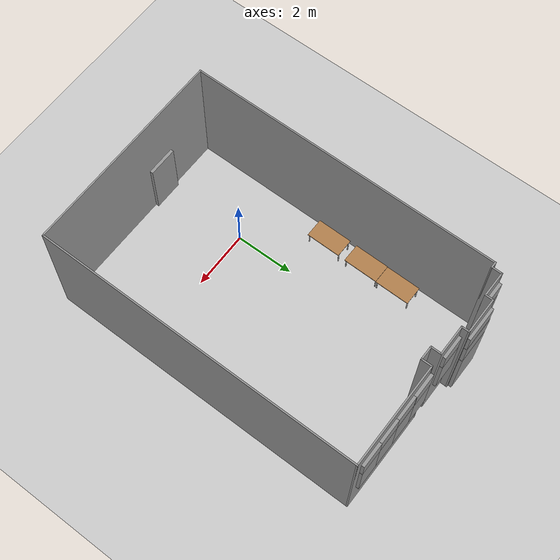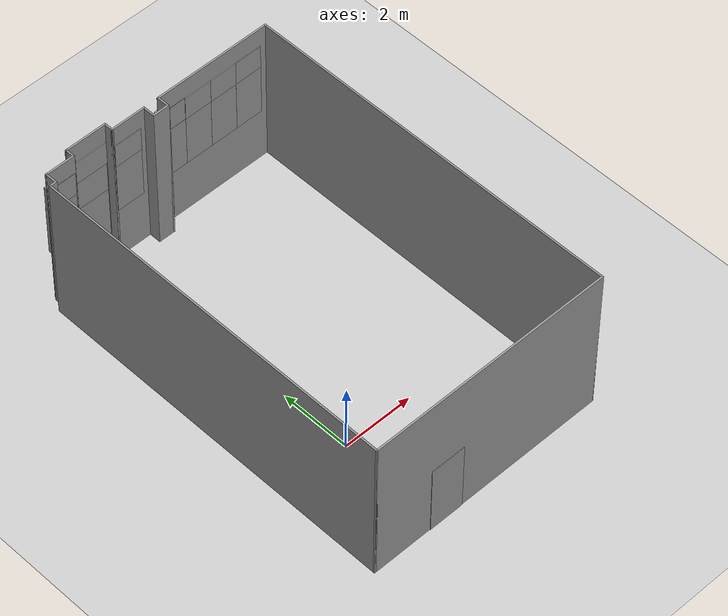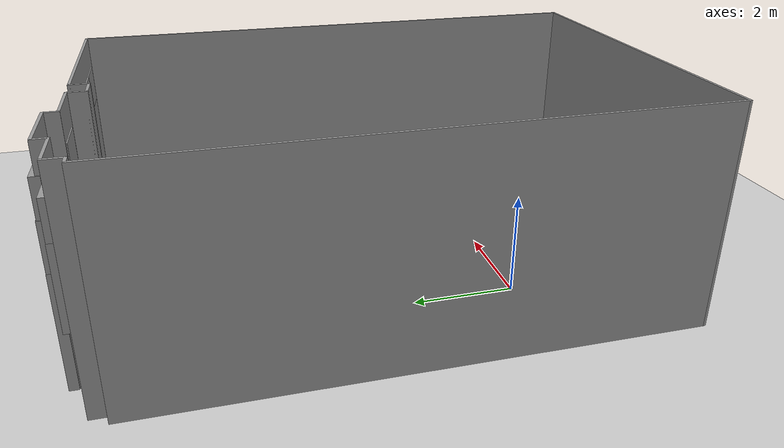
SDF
<sdf version="1.7">
 <world name="default">
  <model name="ground_plane">
   <static>1</static>
   <link name="link">
    <collision name="collision">
     <geometry><plane><normal>0 0 1</normal><size>100 100</size></plane></geometry>
     <surface>
      <contact><collide_bitmask>65535</collide_bitmask></contact>
      <friction><ode><mu>100</mu><mu2>50</mu2></ode></friction>
     </surface>
    </collision>
    <visual name="visual">
     <cast_shadows>0</cast_shadows>
     <geometry><plane><normal>0 0 1</normal><size>100 100</size></plane></geometry>
     <material>
      <script><uri>file://media/materials/scripts/gazebo.material</uri><name>Gazebo/Grey</name></script>
     </material>
    </visual>
   </link>
  </model>
  <model name="RoboticLab">
   <pose>1.47128 2.55443 0 0 -0 0</pose>
   <link name="Wall_14">
    <collision name="Wall_14_Collision">
     <geometry><box><size>6.99 0.05 4.35</size></box></geometry>
     <pose>0 0 2.175 0 -0 0</pose>
    </collision>
    <visual name="Wall_14_Visual">
     <pose>0 0 2.175 0 -0 0</pose>
     <geometry><box><size>6.99 0.05 4.35</size></box></geometry>
     <material>
      <script><uri>file://media/materials/scripts/gazebo.material</uri><name>Gazebo/Grey</name></script>
      <ambient>1 1 1 1</ambient>
     </material>
     <meta><layer>0</layer></meta>
    </visual>
    <pose>-0 -5.495 0 0 -0 0</pose>
   </link>
   <link name="Wall_16">
    <collision name="Wall_16_Collision">
     <geometry><box><size>10.8 0.05 4.35</size></box></geometry>
     <pose>0 0 2.175 0 -0 0</pose>
    </collision>
    <visual name="Wall_16_Visual">
     <pose>0 0 2.175 0 -0 0</pose>
     <geometry><box><size>10.8 0.05 4.35</size></box></geometry>
     <material>
      <script><uri>file://media/materials/scripts/gazebo.material</uri><name>Gazebo/Grey</name></script>
      <ambient>1 1 1 1</ambient>
     </material>
     <meta><layer>0</layer></meta>
    </visual>
    <pose>3.47 -0.12 0 0 -0 1.5708</pose>
   </link>
   <link name="Wall_18">
    <collision name="Wall_18_Collision">
     <geometry><box><size>10.48 0.05 4.35</size></box></geometry>
     <pose>0 0 2.175 0 -0 0</pose>
    </collision>
    <visual name="Wall_18_Visual">
     <pose>0 0 2.175 0 -0 0</pose>
     <geometry><box><size>10.48 0.05 4.35</size></box></geometry>
     <material>
      <script><uri>file://media/materials/scripts/gazebo.material</uri><name>Gazebo/Grey</name></script>
      <ambient>1 1 1 1</ambient>
     </material>
     <meta><layer>0</layer></meta>
    </visual>
    <pose>-3.47 -0.28 0 0 -0 1.5708</pose>
   </link>
   <link name="Wall_20">
    <collision name="Wall_20_Collision">
     <geometry><box><size>0.22 0.05 4.35</size></box></geometry>
     <pose>0 0 2.175 0 -0 0</pose>
    </collision>
    <visual name="Wall_20_Visual">
     <pose>0 0 2.175 0 -0 0</pose>
     <geometry><box><size>0.22 0.05 4.35</size></box></geometry>
     <material>
      <script><uri>file://media/materials/scripts/gazebo.material</uri><name>Gazebo/Grey</name></script>
      <ambient>1 1 1 1</ambient>
     </material>
     <meta><layer>0</layer></meta>
    </visual>
    <pose>-3.385 4.935 0 0 -0 0</pose>
   </link>
   <link name="Wall_25">
    <collision name="Wall_25_Collision">
     <geometry><box><size>0.37 0.05 4.35</size></box></geometry>
     <pose>0 0 2.175 0 -0 0</pose>
    </collision>
    <visual name="Wall_25_Visual">
     <pose>0 0 2.175 0 -0 0</pose>
     <geometry><box><size>0.37 0.05 4.35</size></box></geometry>
     <material>
      <script><uri>file://media/materials/scripts/gazebo.material</uri><name>Gazebo/Grey</name></script>
      <ambient>1 1 1 1</ambient>
     </material>
     <meta><layer>0</layer></meta>
    </visual>
    <pose>-3.3 5.095 0 0 -0 1.5708</pose>
   </link>
   <link name="Wall_27">
    <collision name="Wall_27_Collision">
     <geometry><box><size>0.86 0.05 4.35</size></box></geometry>
     <pose>0 0 2.175 0 -0 0</pose>
    </collision>
    <visual name="Wall_27_Visual">
     <pose>0 0 2.175 0 -0 0</pose>
     <geometry><box><size>0.86 0.05 4.35</size></box></geometry>
     <material>
      <script><uri>file://media/materials/scripts/gazebo.material</uri><name>Gazebo/Grey</name></script>
      <ambient>1 1 1 1</ambient>
     </material>
     <meta><layer>0</layer></meta>
    </visual>
    <pose>-2.895 5.255 0 0 -0 0</pose>
   </link>
   <link name="Wall_29">
    <collision name="Wall_29_Collision">
     <geometry><box><size>0.29 0.05 4.35</size></box></geometry>
     <pose>0 0 2.175 0 -0 0</pose>
    </collision>
    <visual name="Wall_29_Visual">
     <pose>0 0 2.175 0 -0 0</pose>
     <geometry><box><size>0.29 0.05 4.35</size></box></geometry>
     <material>
      <script><uri>file://media/materials/scripts/gazebo.material</uri><name>Gazebo/Grey</name></script>
      <ambient>1 1 1 1</ambient>
     </material>
     <meta><layer>0</layer></meta>
    </visual>
    <pose>-2.49 5.375 0 0 -0 1.5708</pose>
   </link>
   <link name="Wall_32">
    <collision name="Wall_32_Collision">
     <geometry><box><size>1.22 0.05 4.35</size></box></geometry>
     <pose>0 0 2.175 0 -0 0</pose>
    </collision>
    <visual name="Wall_32_Visual">
     <pose>0 0 2.175 0 -0 0</pose>
     <geometry><box><size>1.22 0.05 4.35</size></box></geometry>
     <material>
      <script><uri>file://media/materials/scripts/gazebo.material</uri><name>Gazebo/Grey</name></script>
      <ambient>1 1 1 1</ambient>
     </material>
     <meta><layer>0</layer></meta>
    </visual>
    <pose>-1.905 5.495 0 0 -0 0</pose>
   </link>
   <link name="Wall_34">
    <collision name="Wall_34_Collision">
     <geometry><box><size>0.29 0.05 4.35</size></box></geometry>
     <pose>0 0 2.175 0 -0 0</pose>
    </collision>
    <visual name="Wall_34_Visual">
     <pose>0 0 2.175 0 -0 0</pose>
     <geometry><box><size>0.29 0.05 4.35</size></box></geometry>
     <material>
      <script><uri>file://media/materials/scripts/gazebo.material</uri><name>Gazebo/Grey</name></script>
      <ambient>1 1 1 1</ambient>
     </material>
     <meta><layer>0</layer></meta>
    </visual>
    <pose>-1.32 5.375 0 0 -0 -1.5708</pose>
   </link>
   <link name="Wall_37">
    <collision name="Wall_37_Collision">
     <geometry><box><size>1.03 0.05 4.35</size></box></geometry>
     <pose>0 0 2.175 0 -0 0</pose>
    </collision>
    <visual name="Wall_37_Visual">
     <pose>0 0 2.175 0 -0 0</pose>
     <geometry><box><size>1.03 0.05 4.35</size></box></geometry>
     <material>
      <script><uri>file://media/materials/scripts/gazebo.material</uri><name>Gazebo/Grey</name></script>
      <ambient>1 1 1 1</ambient>
     </material>
     <meta><layer>0</layer></meta>
    </visual>
    <pose>-0.83 5.255 0 0 -0 0</pose>
   </link>
   <link name="Wall_39">
    <collision name="Wall_39_Collision">
     <geometry><box><size>0.38 0.05 4.35</size></box></geometry>
     <pose>0 0 2.175 0 -0 0</pose>
    </collision>
    <visual name="Wall_39_Visual">
     <pose>0 0 2.175 0 -0 0</pose>
     <geometry><box><size>0.38 0.05 4.35</size></box></geometry>
     <material>
      <script><uri>file://media/materials/scripts/gazebo.material</uri><name>Gazebo/Grey</name></script>
      <ambient>1 1 1 1</ambient>
     </material>
     <meta><layer>0</layer></meta>
    </visual>
    <pose>-0.34 5.09 0 0 -0 -1.5708</pose>
   </link>
   <link name="Wall_41">
    <collision name="Wall_41_Collision">
     <geometry><box><size>0.49 0.05 4.35</size></box></geometry>
     <pose>0 0 2.175 0 -0 0</pose>
    </collision>
    <visual name="Wall_41_Visual">
     <pose>0 0 2.175 0 -0 0</pose>
     <geometry><box><size>0.49 0.05 4.35</size></box></geometry>
     <material>
      <script><uri>file://media/materials/scripts/gazebo.material</uri><name>Gazebo/Grey</name></script>
      <ambient>1 1 1 1</ambient>
     </material>
     <meta><layer>0</layer></meta>
    </visual>
    <pose>-0.12 4.925 0 0 -0 0</pose>
   </link>
   <link name="Wall_43">
    <collision name="Wall_43_Collision">
     <geometry><box><size>0.38 0.05 4.35</size></box></geometry>
     <pose>0 0 2.175 0 -0 0</pose>
    </collision>
    <visual name="Wall_43_Visual">
     <pose>0 0 2.175 0 -0 0</pose>
     <geometry><box><size>0.38 0.05 4.35</size></box></geometry>
     <material>
      <script><uri>file://media/materials/scripts/gazebo.material</uri><name>Gazebo/Grey</name></script>
      <ambient>1 1 1 1</ambient>
     </material>
     <meta><layer>0</layer></meta>
    </visual>
    <pose>0.1 5.09 0 0 -0 1.5708</pose>
   </link>
   <link name="Wall_45">
    <collision name="Wall_45_Collision">
     <geometry><box><size>3.42 0.05 4.35</size></box></geometry>
     <pose>0 0 2.175 0 -0 0</pose>
    </collision>
    <visual name="Wall_45_Visual">
     <pose>0 0 2.175 0 -0 0</pose>
     <geometry><box><size>3.42 0.05 4.35</size></box></geometry>
     <material>
      <script><uri>file://media/materials/scripts/gazebo.material</uri><name>Gazebo/Grey</name></script>
      <ambient>1 1 1 1</ambient>
     </material>
     <meta><layer>0</layer></meta>
    </visual>
    <pose>1.785 5.255 0 0 -0 0</pose>
   </link>
   <static>1</static>
  </model>
  <model name="RoboticLabWIndows">
   <pose>1.4338 2.64515 0 0 -0 0</pose>
   <link name="Door_0">
    <collision name="Door_0_Collision">
     <geometry><box><size>1.17 0.17 2.2</size></box></geometry>
     <pose>0 0 1.1 0 -0 0</pose>
    </collision>
    <visual name="Door_0_Visual">
     <pose>0 0 1.1 0 -0 0</pose>
     <geometry><box><size>1.17 0.17 2.2</size></box></geometry>
     <material>
      <script><uri>file://media/materials/scripts/gazebo.material</uri><name>Gazebo/Grey</name></script>
     </material>
    </visual>
    <pose>-1.91683 5.45564 0 0 -0 0</pose>
   </link>
   <link name="Door_1">
    <collision name="Door_1_Collision">
     <geometry><box><size>1 0.17 2.1</size></box></geometry>
     <pose>0 0 1.05 0 -0 0</pose>
    </collision>
    <visual name="Door_1_Visual">
     <pose>0 0 1.05 0 -0 0</pose>
     <geometry><box><size>1 0.17 2.1</size></box></geometry>
     <material>
      <script><uri>file://media/materials/scripts/gazebo.material</uri><name>Gazebo/Grey</name></script>
     </material>
    </visual>
    <pose>-1.23571 -5.53979 0 0 -0 0</pose>
   </link>
   <link name="Window_1">
    <collision name="Window_1_Collision">
     <geometry><box><size>0.8 0.17 1.5</size></box></geometry>
     <pose>0 0 0.75 0 -0 0</pose>
    </collision>
    <visual name="Window_1_Visual">
     <pose>0 0 0.75 0 -0 0</pose>
     <geometry><box><size>0.8 0.17 1.5</size></box></geometry>
     <material>
      <script><uri>file://media/materials/scripts/gazebo.material</uri><name>Gazebo/Grey</name></script>
     </material>
    </visual>
    <pose>-2.86594 5.21551 1.6 0 -0 0</pose>
   </link>
   <link name="Window_10">
    <collision name="Window_10_Collision">
     <geometry><box><size>0.8 0.17 1.5</size></box></geometry>
     <pose>0 0 0.75 0 -0 0</pose>
    </collision>
    <visual name="Window_10_Visual">
     <pose>0 0 0.75 0 -0 0</pose>
     <geometry><box><size>0.8 0.17 1.5</size></box></geometry>
     <material>
      <script><uri>file://media/materials/scripts/gazebo.material</uri><name>Gazebo/Grey</name></script>
     </material>
    </visual>
    <pose>2.90305 5.20407 1.6 0 -0 0</pose>
   </link>
   <link name="Window_11">
    <collision name="Window_11_Collision">
     <geometry><box><size>0.8 0.17 0.7</size></box></geometry>
     <pose>0 0 0.35 0 -0 0</pose>
    </collision>
    <visual name="Window_11_Visual">
     <pose>0 0 0.35 0 -0 0</pose>
     <geometry><box><size>0.8 0.17 0.7</size></box></geometry>
     <material>
      <script><uri>file://media/materials/scripts/gazebo.material</uri><name>Gazebo/Grey</name></script>
     </material>
    </visual>
    <pose>0.501685 5.20979 3.1 0 -0 0</pose>
   </link>
   <link name="Window_12">
    <collision name="Window_12_Collision">
     <geometry><box><size>0.8 0.17 0.7</size></box></geometry>
     <pose>0 0 0.35 0 -0 0</pose>
    </collision>
    <visual name="Window_12_Visual">
     <pose>0 0 0.35 0 -0 0</pose>
     <geometry><box><size>0.8 0.17 0.7</size></box></geometry>
     <material>
      <script><uri>file://media/materials/scripts/gazebo.material</uri><name>Gazebo/Grey</name></script>
     </material>
    </visual>
    <pose>1.30214 5.19835 3.1 0 -0 0</pose>
   </link>
   <link name="Window_13">
    <collision name="Window_13_Collision">
     <geometry><box><size>0.8 0.17 0.7</size></box></geometry>
     <pose>0 0 0.35 0 -0 0</pose>
    </collision>
    <visual name="Window_13_Visual">
     <pose>0 0 0.35 0 -0 0</pose>
     <geometry><box><size>0.8 0.17 0.7</size></box></geometry>
     <material>
      <script><uri>file://media/materials/scripts/gazebo.material</uri><name>Gazebo/Grey</name></script>
     </material>
    </visual>
    <pose>2.10259 5.19835 3.1 0 -0 0</pose>
   </link>
   <link name="Window_14">
    <collision name="Window_14_Collision">
     <geometry><box><size>0.8 0.17 0.7</size></box></geometry>
     <pose>0 0 0.35 0 -0 0</pose>
    </collision>
    <visual name="Window_14_Visual">
     <pose>0 0 0.35 0 -0 0</pose>
     <geometry><box><size>0.8 0.17 0.7</size></box></geometry>
     <material>
      <script><uri>file://media/materials/scripts/gazebo.material</uri><name>Gazebo/Grey</name></script>
     </material>
    </visual>
    <pose>2.90305 5.20407 3.1 0 -0 0</pose>
   </link>
   <link name="Window_2">
    <collision name="Window_2_Collision">
     <geometry><box><size>0.8 0.17 1.5</size></box></geometry>
     <pose>0 0 0.75 0 -0 0</pose>
    </collision>
    <visual name="Window_2_Visual">
     <pose>0 0 0.75 0 -0 0</pose>
     <geometry><box><size>0.8 0.17 1.5</size></box></geometry>
     <material>
      <script><uri>file://media/materials/scripts/gazebo.material</uri><name>Gazebo/Grey</name></script>
     </material>
    </visual>
    <pose>-0.870523 5.20979 1.6 0 -0 0</pose>
   </link>
   <link name="Window_3">
    <collision name="Window_3_Collision">
     <geometry><box><size>0.8 0.17 0.7</size></box></geometry>
     <pose>0 0 0.35 0 -0 0</pose>
    </collision>
    <visual name="Window_3_Visual">
     <pose>0 0 0.35 0 -0 0</pose>
     <geometry><box><size>0.8 0.17 0.7</size></box></geometry>
     <material>
      <script><uri>file://media/materials/scripts/gazebo.material</uri><name>Gazebo/Grey</name></script>
     </material>
    </visual>
    <pose>-2.86594 5.20979 3.1 0 -0 0</pose>
   </link>
   <link name="Window_4">
    <collision name="Window_4_Collision">
     <geometry><box><size>0.8 0.17 0.7</size></box></geometry>
     <pose>0 0 0.35 0 -0 0</pose>
    </collision>
    <visual name="Window_4_Visual">
     <pose>0 0 0.35 0 -0 0</pose>
     <geometry><box><size>0.8 0.17 0.7</size></box></geometry>
     <material>
      <script><uri>file://media/materials/scripts/gazebo.material</uri><name>Gazebo/Grey</name></script>
     </material>
    </visual>
    <pose>-0.870523 5.20407 3.1 0 -0 0</pose>
   </link>
   <link name="Window_5">
    <collision name="Window_5_Collision">
     <geometry><box><size>1.17 0.17 0.9</size></box></geometry>
     <pose>0 0 0.45 0 -0 0</pose>
    </collision>
    <visual name="Window_5_Visual">
     <pose>0 0 0.45 0 -0 0</pose>
     <geometry><box><size>1.17 0.17 0.9</size></box></geometry>
     <material>
      <script><uri>file://media/materials/scripts/gazebo.material</uri><name>Gazebo/Grey</name></script>
     </material>
    </visual>
    <pose>-1.92255 5.44993 2.2 0 -0 0</pose>
   </link>
   <link name="Window_6">
    <collision name="Window_6_Collision">
     <geometry><box><size>1.17 0.17 0.7</size></box></geometry>
     <pose>0 0 0.35 0 -0 0</pose>
    </collision>
    <visual name="Window_6_Visual">
     <pose>0 0 0.35 0 -0 0</pose>
     <geometry><box><size>1.17 0.17 0.7</size></box></geometry>
     <material>
      <script><uri>file://media/materials/scripts/gazebo.material</uri><name>Gazebo/Grey</name></script>
     </material>
    </visual>
    <pose>-1.91111 5.43849 3.1 0 -0 0</pose>
   </link>
   <link name="Window_7">
    <collision name="Window_7_Collision">
     <geometry><box><size>0.8 0.17 1.5</size></box></geometry>
     <pose>0 0 0.75 0 -0 0</pose>
    </collision>
    <visual name="Window_7_Visual">
     <pose>0 0 0.75 0 -0 0</pose>
     <geometry><box><size>0.8 0.17 1.5</size></box></geometry>
     <material>
      <script><uri>file://media/materials/scripts/gazebo.material</uri><name>Gazebo/Grey</name></script>
     </material>
    </visual>
    <pose>0.501685 5.20407 1.6 0 -0 0</pose>
   </link>
   <link name="Window_8">
    <collision name="Window_8_Collision">
     <geometry><box><size>0.8 0.17 1.5</size></box></geometry>
     <pose>0 0 0.75 0 -0 0</pose>
    </collision>
    <visual name="Window_8_Visual">
     <pose>0 0 0.75 0 -0 0</pose>
     <geometry><box><size>0.8 0.17 1.5</size></box></geometry>
     <material>
      <script><uri>file://media/materials/scripts/gazebo.material</uri><name>Gazebo/Grey</name></script>
     </material>
    </visual>
    <pose>1.30214 5.20407 1.6 0 -0 0</pose>
   </link>
   <link name="Window_9">
    <collision name="Window_9_Collision">
     <geometry><box><size>0.8 0.17 1.5</size></box></geometry>
     <pose>0 0 0.75 0 -0 0</pose>
    </collision>
    <visual name="Window_9_Visual">
     <pose>0 0 0.75 0 -0 0</pose>
     <geometry><box><size>0.8 0.17 1.5</size></box></geometry>
     <material>
      <script><uri>file://media/materials/scripts/gazebo.material</uri><name>Gazebo/Grey</name></script>
     </material>
    </visual>
    <pose>2.10259 5.20407 1.6 0 -0 0</pose>
   </link>
   <static>1</static>
  </model>
  <model name="table_for_pc">
   <link name="link">
    <inertial>
     <mass>1</mass>
     <inertia><ixx>1</ixx><ixy>0</ixy><ixz>0</ixz><iyy>1</iyy><iyz>0</iyz><izz>1</izz></inertia>
    </inertial>
    <visual name="back_right_leg">
     <pose>-0.57 -0.25 0.25 0 -0 0</pose>
     <geometry><cylinder><radius>0.02</radius><length>0.5</length></cylinder></geometry>
     <material>
      <script><uri>file://media/materials/scripts/gazebo.material</uri><name>Gazebo/Grey</name></script>
      <shader type="vertex"><normal_map>__default__</normal_map></shader>
      <ambient>0.3 0.3 0.3 1</ambient>
      <diffuse>0.7 0.7 0.7 1</diffuse>
      <specular>0.01 0.01 0.01 1</specular>
      <emissive>0 0 0 1</emissive>
     </material>
    </visual>
    <visual name="back_left_leg">
     <pose>-0.57 0.25 0.25 0 -0 0</pose>
     <geometry><cylinder><radius>0.02</radius><length>0.5</length></cylinder></geometry>
     <material>
      <script><uri>file://media/materials/scripts/gazebo.material</uri><name>Gazebo/Grey</name></script>
      <shader type="vertex"><normal_map>__default__</normal_map></shader>
      <ambient>0.3 0.3 0.3 1</ambient>
      <diffuse>0.7 0.7 0.7 1</diffuse>
      <specular>0.01 0.01 0.01 1</specular>
      <emissive>0 0 0 1</emissive>
     </material>
    </visual>
    <visual name="front_right_leg">
     <pose>0.57 -0.25 0.25 0 -0 0</pose>
     <geometry><cylinder><radius>0.02</radius><length>0.5</length></cylinder></geometry>
     <material>
      <script><uri>file://media/materials/scripts/gazebo.material</uri><name>Gazebo/Grey</name></script>
      <shader type="vertex"><normal_map>__default__</normal_map></shader>
      <ambient>0.3 0.3 0.3 1</ambient>
      <diffuse>0.7 0.7 0.7 1</diffuse>
      <specular>0.01 0.01 0.01 1</specular>
      <emissive>0 0 0 1</emissive>
     </material>
    </visual>
    <visual name="visual1">
     <pose>0 0 0.5 0 -0 0</pose>
     <geometry><box><size>1.2 0.64 0.024</size></box></geometry>
     <material>
      <script><uri>file://media/materials/scripts/gazebo.material</uri><name>Gazebo/Wood</name></script>
      <shader type="vertex"><normal_map>__default__</normal_map></shader>
      <ambient>1 1 1 1</ambient>
      <diffuse>1 1 1 1</diffuse>
      <specular>0.2 0.2 0.2 1</specular>
      <emissive>0 0 0 1</emissive>
     </material>
    </visual>
    <visual name="front_left_leg">
     <pose>0.57 0.25 0.25 0 -0 0</pose>
     <geometry><cylinder><radius>0.02</radius><length>0.5</length></cylinder></geometry>
     <material>
      <script><uri>file://media/materials/scripts/gazebo.material</uri><name>Gazebo/Grey</name></script>
      <shader type="vertex"><normal_map>__default__</normal_map></shader>
      <ambient>0.3 0.3 0.3 1</ambient>
      <diffuse>0.7 0.7 0.7 1</diffuse>
      <specular>0.01 0.01 0.01 1</specular>
      <emissive>0 0 0 1</emissive>
     </material>
    </visual>
    <collision name="surface">
     <pose>0 0 0.5 0 -0 0</pose>
     <geometry><box><size>1.2 0.64 0.024</size></box></geometry>
     <surface>
      <friction>
       <ode><mu>0.6</mu><mu2>0.6</mu2><fdir1>0 0 0</fdir1><slip1>0</slip1><slip2>0</slip2></ode>
       <torsional>
        <coefficient>1</coefficient>
        <patch_radius>0</patch_radius>
        <surface_radius>0</surface_radius>
        <use_patch_radius>1</use_patch_radius>
        <ode><slip>0</slip></ode>
       </torsional>
      </friction>
      <bounce><restitution_coefficient>0</restitution_coefficient><threshold>1e+06</threshold></bounce>
      <contact>
       <collide_without_contact>0</collide_without_contact>
       <collide_without_contact_bitmask>1</collide_without_contact_bitmask>
       <collide_bitmask>1</collide_bitmask>
       <ode>
        <soft_cfm>0</soft_cfm>
        <soft_erp>0.2</soft_erp>
        <kp>1e+13</kp>
        <kd>1</kd>
        <max_vel>0.01</max_vel>
        <min_depth>0</min_depth>
       </ode>
       <bullet>
        <split_impulse>1</split_impulse>
        <split_impulse_penetration_threshold>-0.01</split_impulse_penetration_threshold>
        <soft_cfm>0</soft_cfm>
        <soft_erp>0.2</soft_erp>
        <kp>1e+13</kp>
        <kd>1</kd>
       </bullet>
      </contact>
     </surface>
    </collision>
    <collision name="back_right_leg">
     <pose>-0.57 -0.25 0.25 0 -0 0</pose>
     <geometry><cylinder><radius>0.02</radius><length>0.5</length></cylinder></geometry>
     <surface>
      <friction>
       <ode><mu>1</mu><mu2>1</mu2><fdir1>0 0 0</fdir1><slip1>0</slip1><slip2>0</slip2></ode>
       <torsional>
        <coefficient>1</coefficient>
        <patch_radius>0</patch_radius>
        <surface_radius>0</surface_radius>
        <use_patch_radius>1</use_patch_radius>
        <ode><slip>0</slip></ode>
       </torsional>
      </friction>
      <bounce><restitution_coefficient>0</restitution_coefficient><threshold>1e+06</threshold></bounce>
      <contact>
       <collide_without_contact>0</collide_without_contact>
       <collide_without_contact_bitmask>1</collide_without_contact_bitmask>
       <collide_bitmask>1</collide_bitmask>
       <ode>
        <soft_cfm>0</soft_cfm>
        <soft_erp>0.2</soft_erp>
        <kp>1e+13</kp>
        <kd>1</kd>
        <max_vel>0.01</max_vel>
        <min_depth>0</min_depth>
       </ode>
       <bullet>
        <split_impulse>1</split_impulse>
        <split_impulse_penetration_threshold>-0.01</split_impulse_penetration_threshold>
        <soft_cfm>0</soft_cfm>
        <soft_erp>0.2</soft_erp>
        <kp>1e+13</kp>
        <kd>1</kd>
       </bullet>
      </contact>
     </surface>
    </collision>
    <collision name="front_right_leg">
     <pose>0.57 -0.25 0.25 0 -0 0</pose>
     <geometry><cylinder><radius>0.02</radius><length>0.5</length></cylinder></geometry>
     <surface>
      <friction>
       <ode><mu>1</mu><mu2>1</mu2><fdir1>0 0 0</fdir1><slip1>0</slip1><slip2>0</slip2></ode>
       <torsional>
        <coefficient>1</coefficient>
        <patch_radius>0</patch_radius>
        <surface_radius>0</surface_radius>
        <use_patch_radius>1</use_patch_radius>
        <ode><slip>0</slip></ode>
       </torsional>
      </friction>
      <bounce><restitution_coefficient>0</restitution_coefficient><threshold>1e+06</threshold></bounce>
      <contact>
       <collide_without_contact>0</collide_without_contact>
       <collide_without_contact_bitmask>1</collide_without_contact_bitmask>
       <collide_bitmask>1</collide_bitmask>
       <ode>
        <soft_cfm>0</soft_cfm>
        <soft_erp>0.2</soft_erp>
        <kp>1e+13</kp>
        <kd>1</kd>
        <max_vel>0.01</max_vel>
        <min_depth>0</min_depth>
       </ode>
       <bullet>
        <split_impulse>1</split_impulse>
        <split_impulse_penetration_threshold>-0.01</split_impulse_penetration_threshold>
        <soft_cfm>0</soft_cfm>
        <soft_erp>0.2</soft_erp>
        <kp>1e+13</kp>
        <kd>1</kd>
       </bullet>
      </contact>
     </surface>
    </collision>
    <collision name="back_left_leg">
     <pose>-0.57 0.25 0.25 0 -0 0</pose>
     <geometry><cylinder><radius>0.02</radius><length>0.5</length></cylinder></geometry>
     <surface>
      <friction>
       <ode><mu>1</mu><mu2>1</mu2><fdir1>0 0 0</fdir1><slip1>0</slip1><slip2>0</slip2></ode>
       <torsional>
        <coefficient>1</coefficient>
        <patch_radius>0</patch_radius>
        <surface_radius>0</surface_radius>
        <use_patch_radius>1</use_patch_radius>
        <ode><slip>0</slip></ode>
       </torsional>
      </friction>
      <bounce><restitution_coefficient>0</restitution_coefficient><threshold>1e+06</threshold></bounce>
      <contact>
       <collide_without_contact>0</collide_without_contact>
       <collide_without_contact_bitmask>1</collide_without_contact_bitmask>
       <collide_bitmask>1</collide_bitmask>
       <ode>
        <soft_cfm>0</soft_cfm>
        <soft_erp>0.2</soft_erp>
        <kp>1e+13</kp>
        <kd>1</kd>
        <max_vel>0.01</max_vel>
        <min_depth>0</min_depth>
       </ode>
       <bullet>
        <split_impulse>1</split_impulse>
        <split_impulse_penetration_threshold>-0.01</split_impulse_penetration_threshold>
        <soft_cfm>0</soft_cfm>
        <soft_erp>0.2</soft_erp>
        <kp>1e+13</kp>
        <kd>1</kd>
       </bullet>
      </contact>
     </surface>
    </collision>
    <collision name="front_left_leg">
     <pose>0.57 0.25 0.25 0 -0 0</pose>
     <geometry><cylinder><radius>0.02</radius><length>0.5</length></cylinder></geometry>
     <surface>
      <friction>
       <ode><mu>1</mu><mu2>1</mu2><fdir1>0 0 0</fdir1><slip1>0</slip1><slip2>0</slip2></ode>
       <torsional>
        <coefficient>1</coefficient>
        <patch_radius>0</patch_radius>
        <surface_radius>0</surface_radius>
        <use_patch_radius>1</use_patch_radius>
        <ode><slip>0</slip></ode>
       </torsional>
      </friction>
      <bounce><restitution_coefficient>0</restitution_coefficient><threshold>1e+06</threshold></bounce>
      <contact>
       <collide_without_contact>0</collide_without_contact>
       <collide_without_contact_bitmask>1</collide_without_contact_bitmask>
       <collide_bitmask>1</collide_bitmask>
       <ode>
        <soft_cfm>0</soft_cfm>
        <soft_erp>0.2</soft_erp>
        <kp>1e+13</kp>
        <kd>1</kd>
        <max_vel>0.01</max_vel>
        <min_depth>0</min_depth>
       </ode>
       <bullet>
        <split_impulse>1</split_impulse>
        <split_impulse_penetration_threshold>-0.01</split_impulse_penetration_threshold>
        <soft_cfm>0</soft_cfm>
        <soft_erp>0.2</soft_erp>
        <kp>1e+13</kp>
        <kd>1</kd>
       </bullet>
      </contact>
     </surface>
    </collision>
   </link>
   <static>1</static>
   <pose>-1.47699 5.05436 0 0 -0 1.56413</pose>
  </model>
  <model name="table_for_pc_clone">
   <link name="link">
    <inertial>
     <mass>1</mass>
     <inertia><ixx>1</ixx><ixy>0</ixy><ixz>0</ixz><iyy>1</iyy><iyz>0</iyz><izz>1</izz></inertia>
    </inertial>
    <visual name="back_right_leg">
     <pose>-0.57 -0.25 0.25 0 -0 0</pose>
     <geometry><cylinder><radius>0.02</radius><length>0.5</length></cylinder></geometry>
     <material>
      <script><uri>file://media/materials/scripts/gazebo.material</uri><name>Gazebo/Grey</name></script>
      <shader type="vertex"><normal_map>__default__</normal_map></shader>
      <ambient>0.3 0.3 0.3 1</ambient>
      <diffuse>0.7 0.7 0.7 1</diffuse>
      <specular>0.01 0.01 0.01 1</specular>
      <emissive>0 0 0 1</emissive>
     </material>
    </visual>
    <visual name="back_left_leg">
     <pose>-0.57 0.25 0.25 0 -0 0</pose>
     <geometry><cylinder><radius>0.02</radius><length>0.5</length></cylinder></geometry>
     <material>
      <script><uri>file://media/materials/scripts/gazebo.material</uri><name>Gazebo/Grey</name></script>
      <shader type="vertex"><normal_map>__default__</normal_map></shader>
      <ambient>0.3 0.3 0.3 1</ambient>
      <diffuse>0.7 0.7 0.7 1</diffuse>
      <specular>0.01 0.01 0.01 1</specular>
      <emissive>0 0 0 1</emissive>
     </material>
    </visual>
    <visual name="front_right_leg">
     <pose>0.57 -0.25 0.25 0 -0 0</pose>
     <geometry><cylinder><radius>0.02</radius><length>0.5</length></cylinder></geometry>
     <material>
      <script><uri>file://media/materials/scripts/gazebo.material</uri><name>Gazebo/Grey</name></script>
      <shader type="vertex"><normal_map>__default__</normal_map></shader>
      <ambient>0.3 0.3 0.3 1</ambient>
      <diffuse>0.7 0.7 0.7 1</diffuse>
      <specular>0.01 0.01 0.01 1</specular>
      <emissive>0 0 0 1</emissive>
     </material>
    </visual>
    <visual name="visual1">
     <pose>0 0 0.5 0 -0 0</pose>
     <geometry><box><size>1.2 0.64 0.024</size></box></geometry>
     <material>
      <script><uri>file://media/materials/scripts/gazebo.material</uri><name>Gazebo/Wood</name></script>
      <shader type="vertex"><normal_map>__default__</normal_map></shader>
      <ambient>1 1 1 1</ambient>
      <diffuse>1 1 1 1</diffuse>
      <specular>0.2 0.2 0.2 1</specular>
      <emissive>0 0 0 1</emissive>
     </material>
    </visual>
    <visual name="front_left_leg">
     <pose>0.57 0.25 0.25 0 -0 0</pose>
     <geometry><cylinder><radius>0.02</radius><length>0.5</length></cylinder></geometry>
     <material>
      <script><uri>file://media/materials/scripts/gazebo.material</uri><name>Gazebo/Grey</name></script>
      <shader type="vertex"><normal_map>__default__</normal_map></shader>
      <ambient>0.3 0.3 0.3 1</ambient>
      <diffuse>0.7 0.7 0.7 1</diffuse>
      <specular>0.01 0.01 0.01 1</specular>
      <emissive>0 0 0 1</emissive>
     </material>
    </visual>
    <collision name="surface">
     <pose>0 0 0.5 0 -0 0</pose>
     <geometry><box><size>1.2 0.64 0.024</size></box></geometry>
     <surface>
      <friction>
       <ode><mu>0.6</mu><mu2>0.6</mu2><fdir1>0 0 0</fdir1><slip1>0</slip1><slip2>0</slip2></ode>
       <torsional>
        <coefficient>1</coefficient>
        <patch_radius>0</patch_radius>
        <surface_radius>0</surface_radius>
        <use_patch_radius>1</use_patch_radius>
        <ode><slip>0</slip></ode>
       </torsional>
      </friction>
      <bounce><restitution_coefficient>0</restitution_coefficient><threshold>1e+06</threshold></bounce>
      <contact>
       <collide_without_contact>0</collide_without_contact>
       <collide_without_contact_bitmask>1</collide_without_contact_bitmask>
       <collide_bitmask>1</collide_bitmask>
       <ode>
        <soft_cfm>0</soft_cfm>
        <soft_erp>0.2</soft_erp>
        <kp>1e+13</kp>
        <kd>1</kd>
        <max_vel>0.01</max_vel>
        <min_depth>0</min_depth>
       </ode>
       <bullet>
        <split_impulse>1</split_impulse>
        <split_impulse_penetration_threshold>-0.01</split_impulse_penetration_threshold>
        <soft_cfm>0</soft_cfm>
        <soft_erp>0.2</soft_erp>
        <kp>1e+13</kp>
        <kd>1</kd>
       </bullet>
      </contact>
     </surface>
    </collision>
    <collision name="back_right_leg">
     <pose>-0.57 -0.25 0.25 0 -0 0</pose>
     <geometry><cylinder><radius>0.02</radius><length>0.5</length></cylinder></geometry>
     <surface>
      <friction>
       <ode><mu>1</mu><mu2>1</mu2><fdir1>0 0 0</fdir1><slip1>0</slip1><slip2>0</slip2></ode>
       <torsional>
        <coefficient>1</coefficient>
        <patch_radius>0</patch_radius>
        <surface_radius>0</surface_radius>
        <use_patch_radius>1</use_patch_radius>
        <ode><slip>0</slip></ode>
       </torsional>
      </friction>
      <bounce><restitution_coefficient>0</restitution_coefficient><threshold>1e+06</threshold></bounce>
      <contact>
       <collide_without_contact>0</collide_without_contact>
       <collide_without_contact_bitmask>1</collide_without_contact_bitmask>
       <collide_bitmask>1</collide_bitmask>
       <ode>
        <soft_cfm>0</soft_cfm>
        <soft_erp>0.2</soft_erp>
        <kp>1e+13</kp>
        <kd>1</kd>
        <max_vel>0.01</max_vel>
        <min_depth>0</min_depth>
       </ode>
       <bullet>
        <split_impulse>1</split_impulse>
        <split_impulse_penetration_threshold>-0.01</split_impulse_penetration_threshold>
        <soft_cfm>0</soft_cfm>
        <soft_erp>0.2</soft_erp>
        <kp>1e+13</kp>
        <kd>1</kd>
       </bullet>
      </contact>
     </surface>
    </collision>
    <collision name="front_right_leg">
     <pose>0.57 -0.25 0.25 0 -0 0</pose>
     <geometry><cylinder><radius>0.02</radius><length>0.5</length></cylinder></geometry>
     <surface>
      <friction>
       <ode><mu>1</mu><mu2>1</mu2><fdir1>0 0 0</fdir1><slip1>0</slip1><slip2>0</slip2></ode>
       <torsional>
        <coefficient>1</coefficient>
        <patch_radius>0</patch_radius>
        <surface_radius>0</surface_radius>
        <use_patch_radius>1</use_patch_radius>
        <ode><slip>0</slip></ode>
       </torsional>
      </friction>
      <bounce><restitution_coefficient>0</restitution_coefficient><threshold>1e+06</threshold></bounce>
      <contact>
       <collide_without_contact>0</collide_without_contact>
       <collide_without_contact_bitmask>1</collide_without_contact_bitmask>
       <collide_bitmask>1</collide_bitmask>
       <ode>
        <soft_cfm>0</soft_cfm>
        <soft_erp>0.2</soft_erp>
        <kp>1e+13</kp>
        <kd>1</kd>
        <max_vel>0.01</max_vel>
        <min_depth>0</min_depth>
       </ode>
       <bullet>
        <split_impulse>1</split_impulse>
        <split_impulse_penetration_threshold>-0.01</split_impulse_penetration_threshold>
        <soft_cfm>0</soft_cfm>
        <soft_erp>0.2</soft_erp>
        <kp>1e+13</kp>
        <kd>1</kd>
       </bullet>
      </contact>
     </surface>
    </collision>
    <collision name="back_left_leg">
     <pose>-0.57 0.25 0.25 0 -0 0</pose>
     <geometry><cylinder><radius>0.02</radius><length>0.5</length></cylinder></geometry>
     <surface>
      <friction>
       <ode><mu>1</mu><mu2>1</mu2><fdir1>0 0 0</fdir1><slip1>0</slip1><slip2>0</slip2></ode>
       <torsional>
        <coefficient>1</coefficient>
        <patch_radius>0</patch_radius>
        <surface_radius>0</surface_radius>
        <use_patch_radius>1</use_patch_radius>
        <ode><slip>0</slip></ode>
       </torsional>
      </friction>
      <bounce><restitution_coefficient>0</restitution_coefficient><threshold>1e+06</threshold></bounce>
      <contact>
       <collide_without_contact>0</collide_without_contact>
       <collide_without_contact_bitmask>1</collide_without_contact_bitmask>
       <collide_bitmask>1</collide_bitmask>
       <ode>
        <soft_cfm>0</soft_cfm>
        <soft_erp>0.2</soft_erp>
        <kp>1e+13</kp>
        <kd>1</kd>
        <max_vel>0.01</max_vel>
        <min_depth>0</min_depth>
       </ode>
       <bullet>
        <split_impulse>1</split_impulse>
        <split_impulse_penetration_threshold>-0.01</split_impulse_penetration_threshold>
        <soft_cfm>0</soft_cfm>
        <soft_erp>0.2</soft_erp>
        <kp>1e+13</kp>
        <kd>1</kd>
       </bullet>
      </contact>
     </surface>
    </collision>
    <collision name="front_left_leg">
     <pose>0.57 0.25 0.25 0 -0 0</pose>
     <geometry><cylinder><radius>0.02</radius><length>0.5</length></cylinder></geometry>
     <surface>
      <friction>
       <ode><mu>1</mu><mu2>1</mu2><fdir1>0 0 0</fdir1><slip1>0</slip1><slip2>0</slip2></ode>
       <torsional>
        <coefficient>1</coefficient>
        <patch_radius>0</patch_radius>
        <surface_radius>0</surface_radius>
        <use_patch_radius>1</use_patch_radius>
        <ode><slip>0</slip></ode>
       </torsional>
      </friction>
      <bounce><restitution_coefficient>0</restitution_coefficient><threshold>1e+06</threshold></bounce>
      <contact>
       <collide_without_contact>0</collide_without_contact>
       <collide_without_contact_bitmask>1</collide_without_contact_bitmask>
       <collide_bitmask>1</collide_bitmask>
       <ode>
        <soft_cfm>0</soft_cfm>
        <soft_erp>0.2</soft_erp>
        <kp>1e+13</kp>
        <kd>1</kd>
        <max_vel>0.01</max_vel>
        <min_depth>0</min_depth>
       </ode>
       <bullet>
        <split_impulse>1</split_impulse>
        <split_impulse_penetration_threshold>-0.01</split_impulse_penetration_threshold>
        <soft_cfm>0</soft_cfm>
        <soft_erp>0.2</soft_erp>
        <kp>1e+13</kp>
        <kd>1</kd>
       </bullet>
      </contact>
     </surface>
    </collision>
   </link>
   <static>1</static>
   <pose>-1.49312 3.8485 0 0 -0 1.56413</pose>
  </model>
  <model name="table_for_pc_clone_0">
   <link name="link">
    <inertial>
     <mass>1</mass>
     <inertia><ixx>1</ixx><ixy>0</ixy><ixz>0</ixz><iyy>1</iyy><iyz>0</iyz><izz>1</izz></inertia>
    </inertial>
    <visual name="back_right_leg">
     <pose>-0.57 -0.25 0.25 0 -0 0</pose>
     <geometry><cylinder><radius>0.02</radius><length>0.5</length></cylinder></geometry>
     <material>
      <script><uri>file://media/materials/scripts/gazebo.material</uri><name>Gazebo/Grey</name></script>
      <shader type="vertex"><normal_map>__default__</normal_map></shader>
      <ambient>0.3 0.3 0.3 1</ambient>
      <diffuse>0.7 0.7 0.7 1</diffuse>
      <specular>0.01 0.01 0.01 1</specular>
      <emissive>0 0 0 1</emissive>
     </material>
    </visual>
    <visual name="back_left_leg">
     <pose>-0.57 0.25 0.25 0 -0 0</pose>
     <geometry><cylinder><radius>0.02</radius><length>0.5</length></cylinder></geometry>
     <material>
      <script><uri>file://media/materials/scripts/gazebo.material</uri><name>Gazebo/Grey</name></script>
      <shader type="vertex"><normal_map>__default__</normal_map></shader>
      <ambient>0.3 0.3 0.3 1</ambient>
      <diffuse>0.7 0.7 0.7 1</diffuse>
      <specular>0.01 0.01 0.01 1</specular>
      <emissive>0 0 0 1</emissive>
     </material>
    </visual>
    <visual name="front_right_leg">
     <pose>0.57 -0.25 0.25 0 -0 0</pose>
     <geometry><cylinder><radius>0.02</radius><length>0.5</length></cylinder></geometry>
     <material>
      <script><uri>file://media/materials/scripts/gazebo.material</uri><name>Gazebo/Grey</name></script>
      <shader type="vertex"><normal_map>__default__</normal_map></shader>
      <ambient>0.3 0.3 0.3 1</ambient>
      <diffuse>0.7 0.7 0.7 1</diffuse>
      <specular>0.01 0.01 0.01 1</specular>
      <emissive>0 0 0 1</emissive>
     </material>
    </visual>
    <visual name="visual1">
     <pose>0 0 0.5 0 -0 0</pose>
     <geometry><box><size>1.2 0.64 0.024</size></box></geometry>
     <material>
      <script><uri>file://media/materials/scripts/gazebo.material</uri><name>Gazebo/Wood</name></script>
      <shader type="vertex"><normal_map>__default__</normal_map></shader>
      <ambient>1 1 1 1</ambient>
      <diffuse>1 1 1 1</diffuse>
      <specular>0.2 0.2 0.2 1</specular>
      <emissive>0 0 0 1</emissive>
     </material>
    </visual>
    <visual name="front_left_leg">
     <pose>0.57 0.25 0.25 0 -0 0</pose>
     <geometry><cylinder><radius>0.02</radius><length>0.5</length></cylinder></geometry>
     <material>
      <script><uri>file://media/materials/scripts/gazebo.material</uri><name>Gazebo/Grey</name></script>
      <shader type="vertex"><normal_map>__default__</normal_map></shader>
      <ambient>0.3 0.3 0.3 1</ambient>
      <diffuse>0.7 0.7 0.7 1</diffuse>
      <specular>0.01 0.01 0.01 1</specular>
      <emissive>0 0 0 1</emissive>
     </material>
    </visual>
    <collision name="surface">
     <pose>0 0 0.5 0 -0 0</pose>
     <geometry><box><size>1.2 0.64 0.024</size></box></geometry>
     <surface>
      <friction>
       <ode><mu>0.6</mu><mu2>0.6</mu2><fdir1>0 0 0</fdir1><slip1>0</slip1><slip2>0</slip2></ode>
       <torsional>
        <coefficient>1</coefficient>
        <patch_radius>0</patch_radius>
        <surface_radius>0</surface_radius>
        <use_patch_radius>1</use_patch_radius>
        <ode><slip>0</slip></ode>
       </torsional>
      </friction>
      <bounce><restitution_coefficient>0</restitution_coefficient><threshold>1e+06</threshold></bounce>
      <contact>
       <collide_without_contact>0</collide_without_contact>
       <collide_without_contact_bitmask>1</collide_without_contact_bitmask>
       <collide_bitmask>1</collide_bitmask>
       <ode>
        <soft_cfm>0</soft_cfm>
        <soft_erp>0.2</soft_erp>
        <kp>1e+13</kp>
        <kd>1</kd>
        <max_vel>0.01</max_vel>
        <min_depth>0</min_depth>
       </ode>
       <bullet>
        <split_impulse>1</split_impulse>
        <split_impulse_penetration_threshold>-0.01</split_impulse_penetration_threshold>
        <soft_cfm>0</soft_cfm>
        <soft_erp>0.2</soft_erp>
        <kp>1e+13</kp>
        <kd>1</kd>
       </bullet>
      </contact>
     </surface>
    </collision>
    <collision name="back_right_leg">
     <pose>-0.57 -0.25 0.25 0 -0 0</pose>
     <geometry><cylinder><radius>0.02</radius><length>0.5</length></cylinder></geometry>
     <surface>
      <friction>
       <ode><mu>1</mu><mu2>1</mu2><fdir1>0 0 0</fdir1><slip1>0</slip1><slip2>0</slip2></ode>
       <torsional>
        <coefficient>1</coefficient>
        <patch_radius>0</patch_radius>
        <surface_radius>0</surface_radius>
        <use_patch_radius>1</use_patch_radius>
        <ode><slip>0</slip></ode>
       </torsional>
      </friction>
      <bounce><restitution_coefficient>0</restitution_coefficient><threshold>1e+06</threshold></bounce>
      <contact>
       <collide_without_contact>0</collide_without_contact>
       <collide_without_contact_bitmask>1</collide_without_contact_bitmask>
       <collide_bitmask>1</collide_bitmask>
       <ode>
        <soft_cfm>0</soft_cfm>
        <soft_erp>0.2</soft_erp>
        <kp>1e+13</kp>
        <kd>1</kd>
        <max_vel>0.01</max_vel>
        <min_depth>0</min_depth>
       </ode>
       <bullet>
        <split_impulse>1</split_impulse>
        <split_impulse_penetration_threshold>-0.01</split_impulse_penetration_threshold>
        <soft_cfm>0</soft_cfm>
        <soft_erp>0.2</soft_erp>
        <kp>1e+13</kp>
        <kd>1</kd>
       </bullet>
      </contact>
     </surface>
    </collision>
    <collision name="front_right_leg">
     <pose>0.57 -0.25 0.25 0 -0 0</pose>
     <geometry><cylinder><radius>0.02</radius><length>0.5</length></cylinder></geometry>
     <surface>
      <friction>
       <ode><mu>1</mu><mu2>1</mu2><fdir1>0 0 0</fdir1><slip1>0</slip1><slip2>0</slip2></ode>
       <torsional>
        <coefficient>1</coefficient>
        <patch_radius>0</patch_radius>
        <surface_radius>0</surface_radius>
        <use_patch_radius>1</use_patch_radius>
        <ode><slip>0</slip></ode>
       </torsional>
      </friction>
      <bounce><restitution_coefficient>0</restitution_coefficient><threshold>1e+06</threshold></bounce>
      <contact>
       <collide_without_contact>0</collide_without_contact>
       <collide_without_contact_bitmask>1</collide_without_contact_bitmask>
       <collide_bitmask>1</collide_bitmask>
       <ode>
        <soft_cfm>0</soft_cfm>
        <soft_erp>0.2</soft_erp>
        <kp>1e+13</kp>
        <kd>1</kd>
        <max_vel>0.01</max_vel>
        <min_depth>0</min_depth>
       </ode>
       <bullet>
        <split_impulse>1</split_impulse>
        <split_impulse_penetration_threshold>-0.01</split_impulse_penetration_threshold>
        <soft_cfm>0</soft_cfm>
        <soft_erp>0.2</soft_erp>
        <kp>1e+13</kp>
        <kd>1</kd>
       </bullet>
      </contact>
     </surface>
    </collision>
    <collision name="back_left_leg">
     <pose>-0.57 0.25 0.25 0 -0 0</pose>
     <geometry><cylinder><radius>0.02</radius><length>0.5</length></cylinder></geometry>
     <surface>
      <friction>
       <ode><mu>1</mu><mu2>1</mu2><fdir1>0 0 0</fdir1><slip1>0</slip1><slip2>0</slip2></ode>
       <torsional>
        <coefficient>1</coefficient>
        <patch_radius>0</patch_radius>
        <surface_radius>0</surface_radius>
        <use_patch_radius>1</use_patch_radius>
        <ode><slip>0</slip></ode>
       </torsional>
      </friction>
      <bounce><restitution_coefficient>0</restitution_coefficient><threshold>1e+06</threshold></bounce>
      <contact>
       <collide_without_contact>0</collide_without_contact>
       <collide_without_contact_bitmask>1</collide_without_contact_bitmask>
       <collide_bitmask>1</collide_bitmask>
       <ode>
        <soft_cfm>0</soft_cfm>
        <soft_erp>0.2</soft_erp>
        <kp>1e+13</kp>
        <kd>1</kd>
        <max_vel>0.01</max_vel>
        <min_depth>0</min_depth>
       </ode>
       <bullet>
        <split_impulse>1</split_impulse>
        <split_impulse_penetration_threshold>-0.01</split_impulse_penetration_threshold>
        <soft_cfm>0</soft_cfm>
        <soft_erp>0.2</soft_erp>
        <kp>1e+13</kp>
        <kd>1</kd>
       </bullet>
      </contact>
     </surface>
    </collision>
    <collision name="front_left_leg">
     <pose>0.57 0.25 0.25 0 -0 0</pose>
     <geometry><cylinder><radius>0.02</radius><length>0.5</length></cylinder></geometry>
     <surface>
      <friction>
       <ode><mu>1</mu><mu2>1</mu2><fdir1>0 0 0</fdir1><slip1>0</slip1><slip2>0</slip2></ode>
       <torsional>
        <coefficient>1</coefficient>
        <patch_radius>0</patch_radius>
        <surface_radius>0</surface_radius>
        <use_patch_radius>1</use_patch_radius>
        <ode><slip>0</slip></ode>
       </torsional>
      </friction>
      <bounce><restitution_coefficient>0</restitution_coefficient><threshold>1e+06</threshold></bounce>
      <contact>
       <collide_without_contact>0</collide_without_contact>
       <collide_without_contact_bitmask>1</collide_without_contact_bitmask>
       <collide_bitmask>1</collide_bitmask>
       <ode>
        <soft_cfm>0</soft_cfm>
        <soft_erp>0.2</soft_erp>
        <kp>1e+13</kp>
        <kd>1</kd>
        <max_vel>0.01</max_vel>
        <min_depth>0</min_depth>
       </ode>
       <bullet>
        <split_impulse>1</split_impulse>
        <split_impulse_penetration_threshold>-0.01</split_impulse_penetration_threshold>
        <soft_cfm>0</soft_cfm>
        <soft_erp>0.2</soft_erp>
        <kp>1e+13</kp>
        <kd>1</kd>
       </bullet>
      </contact>
     </surface>
    </collision>
   </link>
   <static>1</static>
   <pose>-1.51257 2.40317 0 0 -0 1.56413</pose>
  </model>
 </world>
</sdf>
